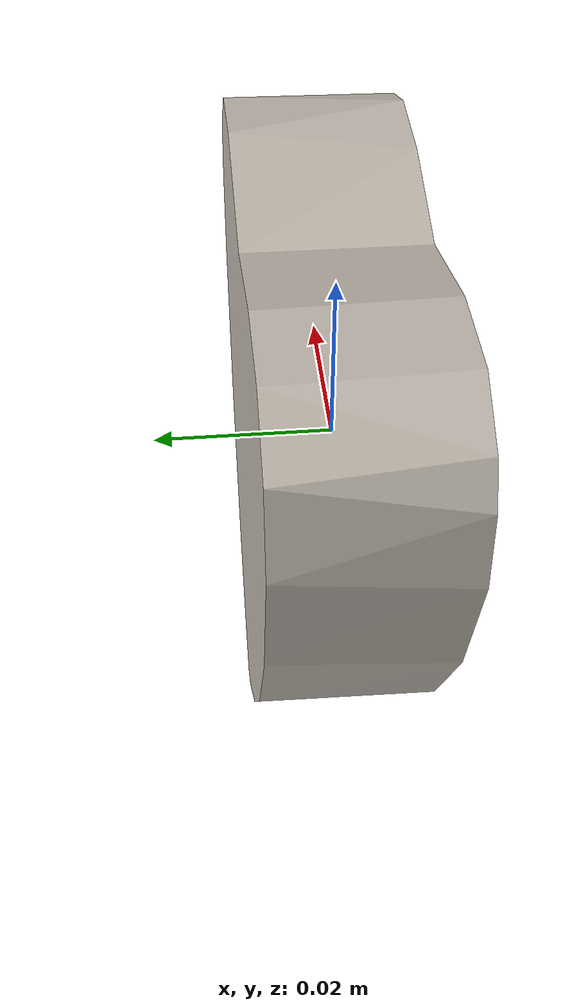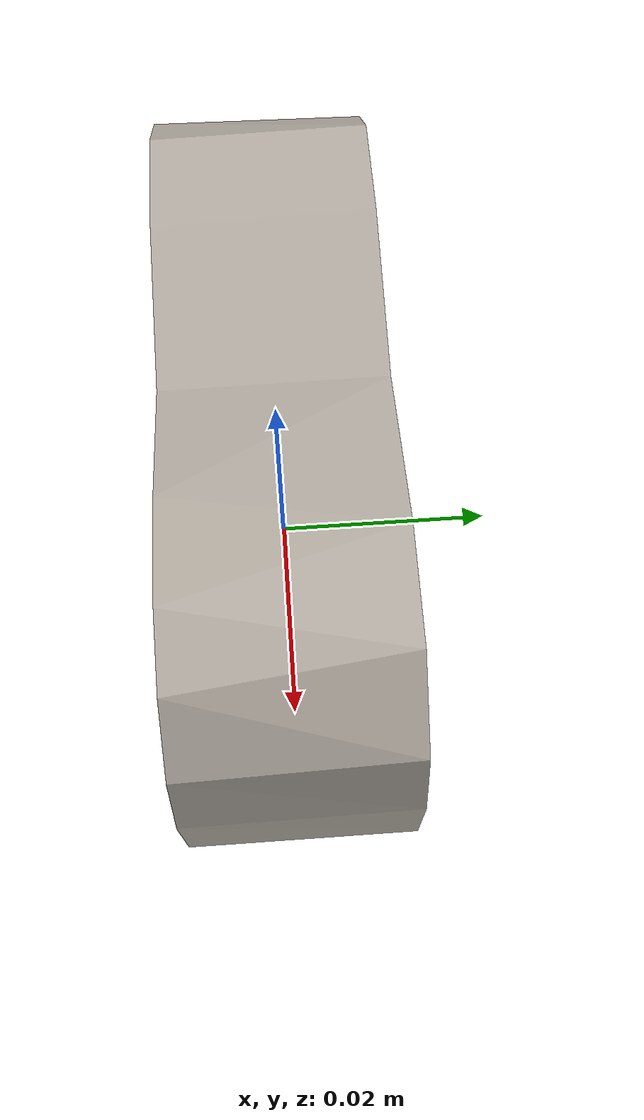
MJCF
<mujoco model="heart">
  <default>
    <default class="visual">
      <geom group="2" type="mesh" contype="0" conaffinity="0"/>
    </default>
    <default class="collision">
      <geom group="3" type="mesh"/>
    </default>
  </default>
  <asset>
    <texture type="2d" name="texture" file="texture.png"/>
    <material name="Material_0.003" texture="texture" specular="0.0" shininess="0.25"/>
    <mesh file="heart.obj"/>
  </asset>
  <worldbody>
    <body name="heart">
      <freejoint/>
      <geom material="Material_0.003" mesh="heart" class="visual"/>
      <geom mesh="heart" class="collision"/>
    </body>
  </worldbody>
</mujoco>
